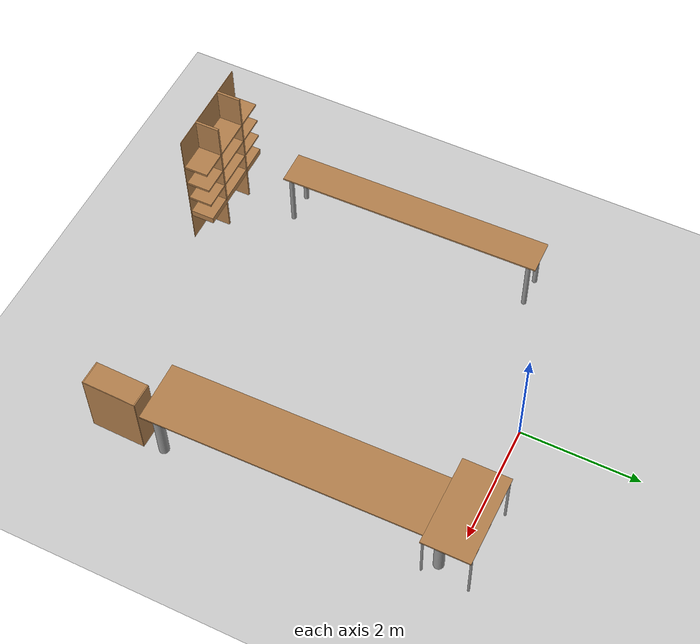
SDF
<sdf version="1.7">
 <world name="default">
  <model name="ground_plane">
   <static>1</static>
   <link name="link">
    <collision name="collision">
     <geometry><plane><normal>0 0 1</normal><size>100 100</size></plane></geometry>
     <surface>
      <contact><collide_bitmask>65535</collide_bitmask></contact>
      <friction><ode><mu>100</mu><mu2>50</mu2></ode></friction>
     </surface>
    </collision>
    <visual name="visual">
     <cast_shadows>0</cast_shadows>
     <geometry><plane><normal>0 0 1</normal><size>100 100</size></plane></geometry>
     <material>
      <script><uri>file://media/materials/scripts/gazebo.material</uri><name>Gazebo/Grey</name></script>
     </material>
    </visual>
   </link>
  </model>
  <model name="bookshelf_0">
   <static>1</static>
   <link name="link">
    <inertial><mass>1</mass></inertial>
    <collision name="back">
     <pose>0 0.005 0.6 0 -0 0</pose>
     <geometry><box><size>0.9 0.01 1.2</size></box></geometry>
    </collision>
    <visual name="visual1">
     <pose>0 0.005 0.6 0 -0 0</pose>
     <geometry><box><size>0.9 0.01 1.2</size></box></geometry>
     <material>
      <script><uri>file://media/materials/scripts/gazebo.material</uri><name>Gazebo/Wood</name></script>
     </material>
    </visual>
    <collision name="left_side">
     <pose>0.45 -0.195 0.6 0 -0 0</pose>
     <geometry><box><size>0.02 0.4 1.2</size></box></geometry>
    </collision>
    <visual name="visual2">
     <pose>0.45 -0.195 0.6 0 -0 0</pose>
     <geometry><box><size>0.02 0.4 1.2</size></box></geometry>
     <material>
      <script><uri>file://media/materials/scripts/gazebo.material</uri><name>Gazebo/Wood</name></script>
     </material>
    </visual>
    <collision name="right_side">
     <pose>-0.45 -0.195 0.6 0 -0 0</pose>
     <geometry><box><size>0.02 0.4 1.2</size></box></geometry>
    </collision>
    <visual name="visual3">
     <pose>-0.45 -0.195 0.6 0 -0 0</pose>
     <geometry><box><size>0.02 0.4 1.2</size></box></geometry>
     <material>
      <script><uri>file://media/materials/scripts/gazebo.material</uri><name>Gazebo/Wood</name></script>
     </material>
    </visual>
    <collision name="bottom">
     <pose>0 -0.195 0.03 0 -0 0</pose>
     <geometry><box><size>0.88 0.4 0.06</size></box></geometry>
    </collision>
    <visual name="visual4">
     <pose>0 -0.195 0.03 0 -0 0</pose>
     <geometry><box><size>0.88 0.4 0.06</size></box></geometry>
     <material>
      <script><uri>file://media/materials/scripts/gazebo.material</uri><name>Gazebo/Wood</name></script>
     </material>
    </visual>
    <collision name="top">
     <pose>0 -0.195 1.19 0 -0 0</pose>
     <geometry><box><size>0.88 0.4 0.02</size></box></geometry>
    </collision>
    <visual name="visual5">
     <pose>0 -0.195 1.19 0 -0 0</pose>
     <geometry><box><size>0.88 0.4 0.02</size></box></geometry>
     <material>
      <script><uri>file://media/materials/scripts/gazebo.material</uri><name>Gazebo/Wood</name></script>
     </material>
    </visual>
    <collision name="low_shelf">
     <pose>0 -0.195 0.43 0 -0 0</pose>
     <geometry><box><size>0.88 0.4 0.02</size></box></geometry>
    </collision>
    <visual name="visual6">
     <pose>0 -0.195 0.43 0 -0 0</pose>
     <geometry><box><size>0.88 0.4 0.02</size></box></geometry>
     <material>
      <script><uri>file://media/materials/scripts/gazebo.material</uri><name>Gazebo/Wood</name></script>
     </material>
    </visual>
    <collision name="high_shelf">
     <pose>0 -0.195 0.8 0 -0 0</pose>
     <geometry><box><size>0.88 0.4 0.02</size></box></geometry>
    </collision>
    <visual name="visual7">
     <pose>0 -0.195 0.8 0 -0 0</pose>
     <geometry><box><size>0.88 0.4 0.02</size></box></geometry>
     <material>
      <script><uri>file://media/materials/scripts/gazebo.material</uri><name>Gazebo/Wood</name></script>
     </material>
    </visual>
   </link>
   <pose>2.73004 -5.57226 0.00418 0 0 -1.59131</pose>
  </model>
  <model name="table_0">
   <link name="link">
    <inertial>
     <inertia><ixx>0</ixx><ixy>0</ixy><ixz>0</ixz><iyy>0</iyy><iyz>0</iyz><izz>0</izz></inertia>
     <mass>0</mass>
    </inertial>
    <pose>1.16745 -0.333998 0 0 -0 0</pose>
    <visual name="front_left_leg">
     <pose>2.3 0.38 0.5 0 -0 0</pose>
     <geometry><cylinder><radius>0.0859649</radius><length>0.953962</length></cylinder></geometry>
     <material>
      <script><uri>file://media/materials/scripts/gazebo.material</uri><name>Gazebo/Grey</name></script>
      <shader type="pixel"><normal_map>__default__</normal_map></shader>
      <ambient>0.3 0.3 0.3 1</ambient>
      <diffuse>0.7 0.7 0.7 1</diffuse>
      <specular>0.01 0.01 0.01 1</specular>
      <emissive>0 0 0 1</emissive>
     </material>
    </visual>
    <visual name="back_left_leg">
     <pose>-2.3 0.38 0.5 0 -0 0</pose>
     <geometry><cylinder><radius>0.0859649</radius><length>0.953962</length></cylinder></geometry>
     <material>
      <script><uri>file://media/materials/scripts/gazebo.material</uri><name>Gazebo/Grey</name></script>
      <shader type="pixel"><normal_map>__default__</normal_map></shader>
      <ambient>0.3 0.3 0.3 1</ambient>
      <diffuse>0.7 0.7 0.7 1</diffuse>
      <specular>0.01 0.01 0.01 1</specular>
      <emissive>0 0 0 1</emissive>
     </material>
    </visual>
    <visual name="front_right_leg">
     <pose>2.3 -0.38 0.5 0 -0 0</pose>
     <geometry><cylinder><radius>0.0859649</radius><length>0.953962</length></cylinder></geometry>
     <material>
      <script><uri>file://media/materials/scripts/gazebo.material</uri><name>Gazebo/Grey</name></script>
      <shader type="pixel"><normal_map>__default__</normal_map></shader>
      <ambient>0.3 0.3 0.3 1</ambient>
      <diffuse>0.7 0.7 0.7 1</diffuse>
      <specular>0.01 0.01 0.01 1</specular>
      <emissive>0 0 0 1</emissive>
     </material>
    </visual>
    <visual name="visual1">
     <pose>0 0 1 0 -0 0</pose>
     <geometry><box><size>5.07081 1.01373 0.028898</size></box></geometry>
     <material>
      <script><uri>file://media/materials/scripts/gazebo.material</uri><name>Gazebo/Wood</name></script>
      <shader type="pixel"><normal_map>__default__</normal_map></shader>
      <ambient>1 1 1 1</ambient>
      <diffuse>1 1 1 1</diffuse>
      <specular>0.2 0.2 0.2 1</specular>
      <emissive>0 0 0 1</emissive>
     </material>
    </visual>
    <visual name="back_right_leg">
     <pose>-2.3 -0.38 0.5 0 -0 0</pose>
     <geometry><cylinder><radius>0.0859649</radius><length>0.953962</length></cylinder></geometry>
     <material>
      <script><uri>file://media/materials/scripts/gazebo.material</uri><name>Gazebo/Grey</name></script>
      <shader type="pixel"><normal_map>__default__</normal_map></shader>
      <ambient>0.3 0.3 0.3 1</ambient>
      <diffuse>0.7 0.7 0.7 1</diffuse>
      <specular>0.01 0.01 0.01 1</specular>
      <emissive>0 0 0 1</emissive>
     </material>
    </visual>
    <collision name="back_right_leg">
     <pose>-0.68 -0.38 0.5 0 -0 0</pose>
     <geometry><cylinder><radius>0.085966</radius><length>0.953962</length></cylinder></geometry>
     <surface>
      <friction>
       <ode><mu>1</mu><mu2>1</mu2><fdir1>0 0 0</fdir1><slip1>0</slip1><slip2>0</slip2></ode>
       <torsional>
        <coefficient>1</coefficient>
        <patch_radius>0</patch_radius>
        <surface_radius>0</surface_radius>
        <use_patch_radius>1</use_patch_radius>
        <ode><slip>0</slip></ode>
       </torsional>
      </friction>
      <bounce><restitution_coefficient>0</restitution_coefficient><threshold>1e+06</threshold></bounce>
      <contact>
       <collide_without_contact>0</collide_without_contact>
       <collide_without_contact_bitmask>1</collide_without_contact_bitmask>
       <collide_bitmask>1</collide_bitmask>
       <ode>
        <soft_cfm>0</soft_cfm>
        <soft_erp>0.2</soft_erp>
        <kp>1e+13</kp>
        <kd>1</kd>
        <max_vel>0.01</max_vel>
        <min_depth>0</min_depth>
       </ode>
       <bullet>
        <split_impulse>1</split_impulse>
        <split_impulse_penetration_threshold>-0.01</split_impulse_penetration_threshold>
        <soft_cfm>0</soft_cfm>
        <soft_erp>0.2</soft_erp>
        <kp>1e+13</kp>
        <kd>1</kd>
       </bullet>
      </contact>
     </surface>
    </collision>
    <collision name="front_right_leg">
     <pose>0.68 -0.38 0.5 0 -0 0</pose>
     <geometry><cylinder><radius>0.085966</radius><length>0.953962</length></cylinder></geometry>
     <surface>
      <friction>
       <ode><mu>1</mu><mu2>1</mu2><fdir1>0 0 0</fdir1><slip1>0</slip1><slip2>0</slip2></ode>
       <torsional>
        <coefficient>1</coefficient>
        <patch_radius>0</patch_radius>
        <surface_radius>0</surface_radius>
        <use_patch_radius>1</use_patch_radius>
        <ode><slip>0</slip></ode>
       </torsional>
      </friction>
      <bounce><restitution_coefficient>0</restitution_coefficient><threshold>1e+06</threshold></bounce>
      <contact>
       <collide_without_contact>0</collide_without_contact>
       <collide_without_contact_bitmask>1</collide_without_contact_bitmask>
       <collide_bitmask>1</collide_bitmask>
       <ode>
        <soft_cfm>0</soft_cfm>
        <soft_erp>0.2</soft_erp>
        <kp>1e+13</kp>
        <kd>1</kd>
        <max_vel>0.01</max_vel>
        <min_depth>0</min_depth>
       </ode>
       <bullet>
        <split_impulse>1</split_impulse>
        <split_impulse_penetration_threshold>-0.01</split_impulse_penetration_threshold>
        <soft_cfm>0</soft_cfm>
        <soft_erp>0.2</soft_erp>
        <kp>1e+13</kp>
        <kd>1</kd>
       </bullet>
      </contact>
     </surface>
    </collision>
    <collision name="back_left_leg">
     <pose>-0.68 0.38 0.5 0 -0 0</pose>
     <geometry><cylinder><radius>0.085966</radius><length>0.953962</length></cylinder></geometry>
     <surface>
      <friction>
       <ode><mu>1</mu><mu2>1</mu2><fdir1>0 0 0</fdir1><slip1>0</slip1><slip2>0</slip2></ode>
       <torsional>
        <coefficient>1</coefficient>
        <patch_radius>0</patch_radius>
        <surface_radius>0</surface_radius>
        <use_patch_radius>1</use_patch_radius>
        <ode><slip>0</slip></ode>
       </torsional>
      </friction>
      <bounce><restitution_coefficient>0</restitution_coefficient><threshold>1e+06</threshold></bounce>
      <contact>
       <collide_without_contact>0</collide_without_contact>
       <collide_without_contact_bitmask>1</collide_without_contact_bitmask>
       <collide_bitmask>1</collide_bitmask>
       <ode>
        <soft_cfm>0</soft_cfm>
        <soft_erp>0.2</soft_erp>
        <kp>1e+13</kp>
        <kd>1</kd>
        <max_vel>0.01</max_vel>
        <min_depth>0</min_depth>
       </ode>
       <bullet>
        <split_impulse>1</split_impulse>
        <split_impulse_penetration_threshold>-0.01</split_impulse_penetration_threshold>
        <soft_cfm>0</soft_cfm>
        <soft_erp>0.2</soft_erp>
        <kp>1e+13</kp>
        <kd>1</kd>
       </bullet>
      </contact>
     </surface>
    </collision>
    <collision name="surface">
     <pose>0 0 1 0 -0 0</pose>
     <geometry><box><size>5.07081 1.01373 0.028898</size></box></geometry>
     <surface>
      <friction>
       <ode><mu>0.6</mu><mu2>0.6</mu2><fdir1>0 0 0</fdir1><slip1>0</slip1><slip2>0</slip2></ode>
       <torsional>
        <coefficient>1</coefficient>
        <patch_radius>0</patch_radius>
        <surface_radius>0</surface_radius>
        <use_patch_radius>1</use_patch_radius>
        <ode><slip>0</slip></ode>
       </torsional>
      </friction>
      <bounce><restitution_coefficient>0</restitution_coefficient><threshold>1e+06</threshold></bounce>
      <contact>
       <collide_without_contact>0</collide_without_contact>
       <collide_without_contact_bitmask>1</collide_without_contact_bitmask>
       <collide_bitmask>1</collide_bitmask>
       <ode>
        <soft_cfm>0</soft_cfm>
        <soft_erp>0.2</soft_erp>
        <kp>1e+13</kp>
        <kd>1</kd>
        <max_vel>0.01</max_vel>
        <min_depth>0</min_depth>
       </ode>
       <bullet>
        <split_impulse>1</split_impulse>
        <split_impulse_penetration_threshold>-0.01</split_impulse_penetration_threshold>
        <soft_cfm>0</soft_cfm>
        <soft_erp>0.2</soft_erp>
        <kp>1e+13</kp>
        <kd>1</kd>
       </bullet>
      </contact>
     </surface>
    </collision>
    <collision name="front_left_leg">
     <pose>0.68 0.38 0.5 0 -0 0</pose>
     <geometry><cylinder><radius>0.085966</radius><length>0.953962</length></cylinder></geometry>
     <surface>
      <friction>
       <ode><mu>1</mu><mu2>1</mu2><fdir1>0 0 0</fdir1><slip1>0</slip1><slip2>0</slip2></ode>
       <torsional>
        <coefficient>1</coefficient>
        <patch_radius>0</patch_radius>
        <surface_radius>0</surface_radius>
        <use_patch_radius>1</use_patch_radius>
        <ode><slip>0</slip></ode>
       </torsional>
      </friction>
      <bounce><restitution_coefficient>0</restitution_coefficient><threshold>1e+06</threshold></bounce>
      <contact>
       <collide_without_contact>0</collide_without_contact>
       <collide_without_contact_bitmask>1</collide_without_contact_bitmask>
       <collide_bitmask>1</collide_bitmask>
       <ode>
        <soft_cfm>0</soft_cfm>
        <soft_erp>0.2</soft_erp>
        <kp>1e+13</kp>
        <kd>1</kd>
        <max_vel>0.01</max_vel>
        <min_depth>0</min_depth>
       </ode>
       <bullet>
        <split_impulse>1</split_impulse>
        <split_impulse_penetration_threshold>-0.01</split_impulse_penetration_threshold>
        <soft_cfm>0</soft_cfm>
        <soft_erp>0.2</soft_erp>
        <kp>1e+13</kp>
        <kd>1</kd>
       </bullet>
      </contact>
     </surface>
    </collision>
   </link>
   <static>1</static>
   <pose>2.56032 -1.33661 0 0 0 -1.55574</pose>
  </model>
  <model name="table">
   <static>1</static>
   <link name="link">
    <collision name="surface">
     <pose>0 0 1 0 -0 0</pose>
     <geometry><box><size>1.5 0.8 0.03</size></box></geometry>
     <surface><friction><ode><mu>0.6</mu><mu2>0.6</mu2></ode></friction></surface>
    </collision>
    <visual name="visual1">
     <pose>0 0 1 0 -0 0</pose>
     <geometry><box><size>1.5 0.8 0.03</size></box></geometry>
     <material>
      <script><uri>file://media/materials/scripts/gazebo.material</uri><name>Gazebo/Wood</name></script>
     </material>
    </visual>
    <collision name="front_left_leg">
     <pose>0.68 0.38 0.5 0 -0 0</pose>
     <geometry><cylinder><radius>0.02</radius><length>1</length></cylinder></geometry>
    </collision>
    <visual name="front_left_leg">
     <pose>0.68 0.38 0.5 0 -0 0</pose>
     <geometry><cylinder><radius>0.02</radius><length>1</length></cylinder></geometry>
     <material>
      <script><uri>file://media/materials/scripts/gazebo.material</uri><name>Gazebo/Grey</name></script>
     </material>
    </visual>
    <collision name="front_right_leg">
     <pose>0.68 -0.38 0.5 0 -0 0</pose>
     <geometry><cylinder><radius>0.02</radius><length>1</length></cylinder></geometry>
    </collision>
    <visual name="front_right_leg">
     <pose>0.68 -0.38 0.5 0 -0 0</pose>
     <geometry><cylinder><radius>0.02</radius><length>1</length></cylinder></geometry>
     <material>
      <script><uri>file://media/materials/scripts/gazebo.material</uri><name>Gazebo/Grey</name></script>
     </material>
    </visual>
    <collision name="back_right_leg">
     <pose>-0.68 -0.38 0.5 0 -0 0</pose>
     <geometry><cylinder><radius>0.02</radius><length>1</length></cylinder></geometry>
    </collision>
    <visual name="back_right_leg">
     <pose>-0.68 -0.38 0.5 0 -0 0</pose>
     <geometry><cylinder><radius>0.02</radius><length>1</length></cylinder></geometry>
     <material>
      <script><uri>file://media/materials/scripts/gazebo.material</uri><name>Gazebo/Grey</name></script>
     </material>
    </visual>
    <collision name="back_left_leg">
     <pose>-0.68 0.38 0.5 0 -0 0</pose>
     <geometry><cylinder><radius>0.02</radius><length>1</length></cylinder></geometry>
    </collision>
    <visual name="back_left_leg">
     <pose>-0.68 0.38 0.5 0 -0 0</pose>
     <geometry><cylinder><radius>0.02</radius><length>1</length></cylinder></geometry>
     <material>
      <script><uri>file://media/materials/scripts/gazebo.material</uri><name>Gazebo/Grey</name></script>
     </material>
    </visual>
   </link>
   <pose>2.08899 -0.025051 0 0 -0 0</pose>
  </model>
  <model name="bookshelf_1">
   <link name="link">
    <inertial>
     <mass>3.70083</mass>
     <inertia>
      <ixx>0.0497882</ixx>
      <ixy>0</ixy>
      <ixz>0</ixz>
      <iyy>0.848153</iyy>
      <iyz>0</iyz>
      <izz>0.897053</izz>
     </inertia>
    </inertial>
    <pose>0.379086 0 0.607317 0 -0 0</pose>
    <visual name="visual1">
     <pose>0 0.005 0.6 0 -0 0</pose>
     <geometry><box><size>1.6956 0.01 2.39901</size></box></geometry>
     <material>
      <script><uri>file://media/materials/scripts/gazebo.material</uri><name>Gazebo/Wood</name></script>
      <shader type="pixel"><normal_map>__default__</normal_map></shader>
      <ambient>1 1 1 1</ambient>
      <diffuse>1 1 1 1</diffuse>
      <specular>0.2 0.2 0.2 1</specular>
      <emissive>0 0 0 1</emissive>
     </material>
    </visual>
    <visual name="visual6">
     <pose>0 -0.195 0.43 0 -0 0</pose>
     <geometry><box><size>1.65792 0.4 0.037937</size></box></geometry>
     <material>
      <script><uri>file://media/materials/scripts/gazebo.material</uri><name>Gazebo/Wood</name></script>
      <shader type="pixel"><normal_map>__default__</normal_map></shader>
      <ambient>1 1 1 1</ambient>
      <diffuse>1 1 1 1</diffuse>
      <specular>0.2 0.2 0.2 1</specular>
      <emissive>0 0 0 1</emissive>
     </material>
    </visual>
    <visual name="visual7">
     <pose>0 -0.195 0.8 0 -0 0</pose>
     <geometry><box><size>1.65792 0.4 0.037937</size></box></geometry>
     <material>
      <script><uri>file://media/materials/scripts/gazebo.material</uri><name>Gazebo/Wood</name></script>
      <shader type="pixel"><normal_map>__default__</normal_map></shader>
      <ambient>1 1 1 1</ambient>
      <diffuse>1 1 1 1</diffuse>
      <specular>0.2 0.2 0.2 1</specular>
      <emissive>0 0 0 1</emissive>
     </material>
    </visual>
    <visual name="visual4">
     <pose>0 -0.195 0.03 0 -0 0</pose>
     <geometry><box><size>1.65792 0.4 0.119432</size></box></geometry>
     <material>
      <script><uri>file://media/materials/scripts/gazebo.material</uri><name>Gazebo/Wood</name></script>
      <shader type="pixel"><normal_map>__default__</normal_map></shader>
      <ambient>1 1 1 1</ambient>
      <diffuse>1 1 1 1</diffuse>
      <specular>0.2 0.2 0.2 1</specular>
      <emissive>0 0 0 1</emissive>
     </material>
    </visual>
    <visual name="visual2">
     <pose>0.35 -0.195 0.6 0 -0 0</pose>
     <geometry><box><size>0.037619 0.4 2.39901</size></box></geometry>
     <material>
      <script><uri>file://media/materials/scripts/gazebo.material</uri><name>Gazebo/Wood</name></script>
      <shader type="pixel"><normal_map>__default__</normal_map></shader>
      <ambient>1 1 1 1</ambient>
      <diffuse>1 1 1 1</diffuse>
      <specular>0.2 0.2 0.2 1</specular>
      <emissive>0 0 0 1</emissive>
     </material>
    </visual>
    <visual name="visual3">
     <pose>-0.35 -0.195 0.6 0 -0 0</pose>
     <geometry><box><size>0.037619 0.4 2.39901</size></box></geometry>
     <material>
      <script><uri>file://media/materials/scripts/gazebo.material</uri><name>Gazebo/Wood</name></script>
      <shader type="pixel"><normal_map>__default__</normal_map></shader>
      <ambient>1 1 1 1</ambient>
      <diffuse>1 1 1 1</diffuse>
      <specular>0.2 0.2 0.2 1</specular>
      <emissive>0 0 0 1</emissive>
     </material>
    </visual>
    <visual name="visual5">
     <pose>0 -0.195 1.19 0 -0 0</pose>
     <geometry><box><size>1.65792 0.4 0.037937</size></box></geometry>
     <material>
      <script><uri>file://media/materials/scripts/gazebo.material</uri><name>Gazebo/Wood</name></script>
      <shader type="pixel"><normal_map>__default__</normal_map></shader>
      <ambient>1 1 1 1</ambient>
      <diffuse>1 1 1 1</diffuse>
      <specular>0.2 0.2 0.2 1</specular>
      <emissive>0 0 0 1</emissive>
     </material>
    </visual>
    <collision name="right_side">
     <pose>-0.45 -0.195 0.6 0 -0 0</pose>
     <geometry><box><size>0.037619 0.4 2.39901</size></box></geometry>
     <surface>
      <friction>
       <ode><mu>1</mu><mu2>1</mu2><fdir1>0 0 0</fdir1><slip1>0</slip1><slip2>0</slip2></ode>
       <torsional>
        <coefficient>1</coefficient>
        <patch_radius>0</patch_radius>
        <surface_radius>0</surface_radius>
        <use_patch_radius>1</use_patch_radius>
        <ode><slip>0</slip></ode>
       </torsional>
      </friction>
      <bounce><restitution_coefficient>0</restitution_coefficient><threshold>1e+06</threshold></bounce>
      <contact>
       <collide_without_contact>0</collide_without_contact>
       <collide_without_contact_bitmask>1</collide_without_contact_bitmask>
       <collide_bitmask>1</collide_bitmask>
       <ode>
        <soft_cfm>0</soft_cfm>
        <soft_erp>0.2</soft_erp>
        <kp>1e+13</kp>
        <kd>1</kd>
        <max_vel>0.01</max_vel>
        <min_depth>0</min_depth>
       </ode>
       <bullet>
        <split_impulse>1</split_impulse>
        <split_impulse_penetration_threshold>-0.01</split_impulse_penetration_threshold>
        <soft_cfm>0</soft_cfm>
        <soft_erp>0.2</soft_erp>
        <kp>1e+13</kp>
        <kd>1</kd>
       </bullet>
      </contact>
     </surface>
    </collision>
    <collision name="back">
     <pose>0 0.005 0.6 0 -0 0</pose>
     <geometry><box><size>1.6956 0.01 2.39901</size></box></geometry>
     <surface>
      <friction>
       <ode><mu>1</mu><mu2>1</mu2><fdir1>0 0 0</fdir1><slip1>0</slip1><slip2>0</slip2></ode>
       <torsional>
        <coefficient>1</coefficient>
        <patch_radius>0</patch_radius>
        <surface_radius>0</surface_radius>
        <use_patch_radius>1</use_patch_radius>
        <ode><slip>0</slip></ode>
       </torsional>
      </friction>
      <bounce><restitution_coefficient>0</restitution_coefficient><threshold>1e+06</threshold></bounce>
      <contact>
       <collide_without_contact>0</collide_without_contact>
       <collide_without_contact_bitmask>1</collide_without_contact_bitmask>
       <collide_bitmask>1</collide_bitmask>
       <ode>
        <soft_cfm>0</soft_cfm>
        <soft_erp>0.2</soft_erp>
        <kp>1e+13</kp>
        <kd>1</kd>
        <max_vel>0.01</max_vel>
        <min_depth>0</min_depth>
       </ode>
       <bullet>
        <split_impulse>1</split_impulse>
        <split_impulse_penetration_threshold>-0.01</split_impulse_penetration_threshold>
        <soft_cfm>0</soft_cfm>
        <soft_erp>0.2</soft_erp>
        <kp>1e+13</kp>
        <kd>1</kd>
       </bullet>
      </contact>
     </surface>
    </collision>
    <collision name="low_shelf">
     <pose>0 -0.195 0.43 0 -0 0</pose>
     <geometry><box><size>1.65792 0.4 0.037937</size></box></geometry>
     <surface>
      <friction>
       <ode><mu>1</mu><mu2>1</mu2><fdir1>0 0 0</fdir1><slip1>0</slip1><slip2>0</slip2></ode>
       <torsional>
        <coefficient>1</coefficient>
        <patch_radius>0</patch_radius>
        <surface_radius>0</surface_radius>
        <use_patch_radius>1</use_patch_radius>
        <ode><slip>0</slip></ode>
       </torsional>
      </friction>
      <bounce><restitution_coefficient>0</restitution_coefficient><threshold>1e+06</threshold></bounce>
      <contact>
       <collide_without_contact>0</collide_without_contact>
       <collide_without_contact_bitmask>1</collide_without_contact_bitmask>
       <collide_bitmask>1</collide_bitmask>
       <ode>
        <soft_cfm>0</soft_cfm>
        <soft_erp>0.2</soft_erp>
        <kp>1e+13</kp>
        <kd>1</kd>
        <max_vel>0.01</max_vel>
        <min_depth>0</min_depth>
       </ode>
       <bullet>
        <split_impulse>1</split_impulse>
        <split_impulse_penetration_threshold>-0.01</split_impulse_penetration_threshold>
        <soft_cfm>0</soft_cfm>
        <soft_erp>0.2</soft_erp>
        <kp>1e+13</kp>
        <kd>1</kd>
       </bullet>
      </contact>
     </surface>
    </collision>
    <collision name="high_shelf">
     <pose>0 -0.195 0.8 0 -0 0</pose>
     <geometry><box><size>1.65792 0.4 0.037937</size></box></geometry>
     <surface>
      <friction>
       <ode><mu>1</mu><mu2>1</mu2><fdir1>0 0 0</fdir1><slip1>0</slip1><slip2>0</slip2></ode>
       <torsional>
        <coefficient>1</coefficient>
        <patch_radius>0</patch_radius>
        <surface_radius>0</surface_radius>
        <use_patch_radius>1</use_patch_radius>
        <ode><slip>0</slip></ode>
       </torsional>
      </friction>
      <bounce><restitution_coefficient>0</restitution_coefficient><threshold>1e+06</threshold></bounce>
      <contact>
       <collide_without_contact>0</collide_without_contact>
       <collide_without_contact_bitmask>1</collide_without_contact_bitmask>
       <collide_bitmask>1</collide_bitmask>
       <ode>
        <soft_cfm>0</soft_cfm>
        <soft_erp>0.2</soft_erp>
        <kp>1e+13</kp>
        <kd>1</kd>
        <max_vel>0.01</max_vel>
        <min_depth>0</min_depth>
       </ode>
       <bullet>
        <split_impulse>1</split_impulse>
        <split_impulse_penetration_threshold>-0.01</split_impulse_penetration_threshold>
        <soft_cfm>0</soft_cfm>
        <soft_erp>0.2</soft_erp>
        <kp>1e+13</kp>
        <kd>1</kd>
       </bullet>
      </contact>
     </surface>
    </collision>
    <collision name="left_side">
     <pose>0.45 -0.195 0.6 0 -0 0</pose>
     <geometry><box><size>0.037619 0.4 2.39901</size></box></geometry>
     <surface>
      <friction>
       <ode><mu>1</mu><mu2>1</mu2><fdir1>0 0 0</fdir1><slip1>0</slip1><slip2>0</slip2></ode>
       <torsional>
        <coefficient>1</coefficient>
        <patch_radius>0</patch_radius>
        <surface_radius>0</surface_radius>
        <use_patch_radius>1</use_patch_radius>
        <ode><slip>0</slip></ode>
       </torsional>
      </friction>
      <bounce><restitution_coefficient>0</restitution_coefficient><threshold>1e+06</threshold></bounce>
      <contact>
       <collide_without_contact>0</collide_without_contact>
       <collide_without_contact_bitmask>1</collide_without_contact_bitmask>
       <collide_bitmask>1</collide_bitmask>
       <ode>
        <soft_cfm>0</soft_cfm>
        <soft_erp>0.2</soft_erp>
        <kp>1e+13</kp>
        <kd>1</kd>
        <max_vel>0.01</max_vel>
        <min_depth>0</min_depth>
       </ode>
       <bullet>
        <split_impulse>1</split_impulse>
        <split_impulse_penetration_threshold>-0.01</split_impulse_penetration_threshold>
        <soft_cfm>0</soft_cfm>
        <soft_erp>0.2</soft_erp>
        <kp>1e+13</kp>
        <kd>1</kd>
       </bullet>
      </contact>
     </surface>
    </collision>
    <collision name="bottom">
     <pose>0 -0.195 0.03 0 -0 0</pose>
     <geometry><box><size>1.65792 0.4 0.119432</size></box></geometry>
     <surface>
      <friction>
       <ode><mu>1</mu><mu2>1</mu2><fdir1>0 0 0</fdir1><slip1>0</slip1><slip2>0</slip2></ode>
       <torsional>
        <coefficient>1</coefficient>
        <patch_radius>0</patch_radius>
        <surface_radius>0</surface_radius>
        <use_patch_radius>1</use_patch_radius>
        <ode><slip>0</slip></ode>
       </torsional>
      </friction>
      <bounce><restitution_coefficient>0</restitution_coefficient><threshold>1e+06</threshold></bounce>
      <contact>
       <collide_without_contact>0</collide_without_contact>
       <collide_without_contact_bitmask>1</collide_without_contact_bitmask>
       <collide_bitmask>1</collide_bitmask>
       <ode>
        <soft_cfm>0</soft_cfm>
        <soft_erp>0.2</soft_erp>
        <kp>1e+13</kp>
        <kd>1</kd>
        <max_vel>0.01</max_vel>
        <min_depth>0</min_depth>
       </ode>
       <bullet>
        <split_impulse>1</split_impulse>
        <split_impulse_penetration_threshold>-0.01</split_impulse_penetration_threshold>
        <soft_cfm>0</soft_cfm>
        <soft_erp>0.2</soft_erp>
        <kp>1e+13</kp>
        <kd>1</kd>
       </bullet>
      </contact>
     </surface>
    </collision>
    <collision name="top">
     <pose>0 -0.195 1.19 0 -0 0</pose>
     <geometry><box><size>1.65792 0.4 0.037937</size></box></geometry>
     <surface>
      <friction>
       <ode><mu>1</mu><mu2>1</mu2><fdir1>0 0 0</fdir1><slip1>0</slip1><slip2>0</slip2></ode>
       <torsional>
        <coefficient>1</coefficient>
        <patch_radius>0</patch_radius>
        <surface_radius>0</surface_radius>
        <use_patch_radius>1</use_patch_radius>
        <ode><slip>0</slip></ode>
       </torsional>
      </friction>
      <bounce><restitution_coefficient>0</restitution_coefficient><threshold>1e+06</threshold></bounce>
      <contact>
       <collide_without_contact>0</collide_without_contact>
       <collide_without_contact_bitmask>1</collide_without_contact_bitmask>
       <collide_bitmask>1</collide_bitmask>
       <ode>
        <soft_cfm>0</soft_cfm>
        <soft_erp>0.2</soft_erp>
        <kp>1e+13</kp>
        <kd>1</kd>
        <max_vel>0.01</max_vel>
        <min_depth>0</min_depth>
       </ode>
       <bullet>
        <split_impulse>1</split_impulse>
        <split_impulse_penetration_threshold>-0.01</split_impulse_penetration_threshold>
        <soft_cfm>0</soft_cfm>
        <soft_erp>0.2</soft_erp>
        <kp>1e+13</kp>
        <kd>1</kd>
       </bullet>
      </contact>
     </surface>
    </collision>
   </link>
   <static>1</static>
   <pose>-1.59209 -6.39662 0 0 0 -3.13659</pose>
  </model>
  <model name="table_1">
   <link name="link">
    <inertial>
     <inertia><ixx>0</ixx><ixy>0</ixy><ixz>0</ixz><iyy>0</iyy><iyz>0</iyz><izz>0</izz></inertia>
     <mass>0</mass>
    </inertial>
    <pose>0.027361 -0.985888 0 0 -0 0</pose>
    <visual name="visual1">
     <pose>0 0 1 0 -0 0</pose>
     <geometry><box><size>4.45665 0.56412 0.03</size></box></geometry>
     <material>
      <script><uri>file://media/materials/scripts/gazebo.material</uri><name>Gazebo/Wood</name></script>
      <shader type="pixel"><normal_map>__default__</normal_map></shader>
      <ambient>1 1 1 1</ambient>
      <diffuse>1 1 1 1</diffuse>
      <specular>0.2 0.2 0.2 1</specular>
      <emissive>0 0 0 1</emissive>
     </material>
    </visual>
    <visual name="back_left_leg">
     <pose>-2.1 0.24 0.5 0 -0 0</pose>
     <geometry><cylinder><radius>0.0421171</radius><length>1</length></cylinder></geometry>
     <material>
      <script><uri>file://media/materials/scripts/gazebo.material</uri><name>Gazebo/Grey</name></script>
      <shader type="pixel"><normal_map>__default__</normal_map></shader>
      <ambient>0.3 0.3 0.3 1</ambient>
      <diffuse>0.7 0.7 0.7 1</diffuse>
      <specular>0.01 0.01 0.01 1</specular>
      <emissive>0 0 0 1</emissive>
     </material>
    </visual>
    <visual name="front_right_leg">
     <pose>2.1 -0.24 0.5 0 -0 0</pose>
     <geometry><cylinder><radius>0.0421171</radius><length>1</length></cylinder></geometry>
     <material>
      <script><uri>file://media/materials/scripts/gazebo.material</uri><name>Gazebo/Grey</name></script>
      <shader type="pixel"><normal_map>__default__</normal_map></shader>
      <ambient>0.3 0.3 0.3 1</ambient>
      <diffuse>0.7 0.7 0.7 1</diffuse>
      <specular>0.01 0.01 0.01 1</specular>
      <emissive>0 0 0 1</emissive>
     </material>
    </visual>
    <visual name="back_right_leg">
     <pose>-2.1 -0.24 0.5 0 -0 0</pose>
     <geometry><cylinder><radius>0.0421171</radius><length>1</length></cylinder></geometry>
     <material>
      <script><uri>file://media/materials/scripts/gazebo.material</uri><name>Gazebo/Grey</name></script>
      <shader type="pixel"><normal_map>__default__</normal_map></shader>
      <ambient>0.3 0.3 0.3 1</ambient>
      <diffuse>0.7 0.7 0.7 1</diffuse>
      <specular>0.01 0.01 0.01 1</specular>
      <emissive>0 0 0 1</emissive>
     </material>
    </visual>
    <visual name="front_left_leg">
     <pose>2.1 0.24 0.5 0 -0 0</pose>
     <geometry><cylinder><radius>0.0421171</radius><length>1</length></cylinder></geometry>
     <material>
      <script><uri>file://media/materials/scripts/gazebo.material</uri><name>Gazebo/Grey</name></script>
      <shader type="pixel"><normal_map>__default__</normal_map></shader>
      <ambient>0.3 0.3 0.3 1</ambient>
      <diffuse>0.7 0.7 0.7 1</diffuse>
      <specular>0.01 0.01 0.01 1</specular>
      <emissive>0 0 0 1</emissive>
     </material>
    </visual>
    <collision name="back_left_leg">
     <pose>-0.68 0.38 0.5 0 -0 0</pose>
     <geometry><cylinder><radius>0.042117</radius><length>1</length></cylinder></geometry>
     <surface>
      <friction>
       <ode><mu>1</mu><mu2>1</mu2><fdir1>0 0 0</fdir1><slip1>0</slip1><slip2>0</slip2></ode>
       <torsional>
        <coefficient>1</coefficient>
        <patch_radius>0</patch_radius>
        <surface_radius>0</surface_radius>
        <use_patch_radius>1</use_patch_radius>
        <ode><slip>0</slip></ode>
       </torsional>
      </friction>
      <bounce><restitution_coefficient>0</restitution_coefficient><threshold>1e+06</threshold></bounce>
      <contact>
       <collide_without_contact>0</collide_without_contact>
       <collide_without_contact_bitmask>1</collide_without_contact_bitmask>
       <collide_bitmask>1</collide_bitmask>
       <ode>
        <soft_cfm>0</soft_cfm>
        <soft_erp>0.2</soft_erp>
        <kp>1e+13</kp>
        <kd>1</kd>
        <max_vel>0.01</max_vel>
        <min_depth>0</min_depth>
       </ode>
       <bullet>
        <split_impulse>1</split_impulse>
        <split_impulse_penetration_threshold>-0.01</split_impulse_penetration_threshold>
        <soft_cfm>0</soft_cfm>
        <soft_erp>0.2</soft_erp>
        <kp>1e+13</kp>
        <kd>1</kd>
       </bullet>
      </contact>
     </surface>
    </collision>
    <collision name="front_left_leg">
     <pose>0.68 0.38 0.5 0 -0 0</pose>
     <geometry><cylinder><radius>0.042117</radius><length>1</length></cylinder></geometry>
     <surface>
      <friction>
       <ode><mu>1</mu><mu2>1</mu2><fdir1>0 0 0</fdir1><slip1>0</slip1><slip2>0</slip2></ode>
       <torsional>
        <coefficient>1</coefficient>
        <patch_radius>0</patch_radius>
        <surface_radius>0</surface_radius>
        <use_patch_radius>1</use_patch_radius>
        <ode><slip>0</slip></ode>
       </torsional>
      </friction>
      <bounce><restitution_coefficient>0</restitution_coefficient><threshold>1e+06</threshold></bounce>
      <contact>
       <collide_without_contact>0</collide_without_contact>
       <collide_without_contact_bitmask>1</collide_without_contact_bitmask>
       <collide_bitmask>1</collide_bitmask>
       <ode>
        <soft_cfm>0</soft_cfm>
        <soft_erp>0.2</soft_erp>
        <kp>1e+13</kp>
        <kd>1</kd>
        <max_vel>0.01</max_vel>
        <min_depth>0</min_depth>
       </ode>
       <bullet>
        <split_impulse>1</split_impulse>
        <split_impulse_penetration_threshold>-0.01</split_impulse_penetration_threshold>
        <soft_cfm>0</soft_cfm>
        <soft_erp>0.2</soft_erp>
        <kp>1e+13</kp>
        <kd>1</kd>
       </bullet>
      </contact>
     </surface>
    </collision>
    <collision name="surface">
     <pose>0 0 1 0 -0 0</pose>
     <geometry><box><size>4.45665 0.56412 0.03</size></box></geometry>
     <surface>
      <friction>
       <ode><mu>0.6</mu><mu2>0.6</mu2><fdir1>0 0 0</fdir1><slip1>0</slip1><slip2>0</slip2></ode>
       <torsional>
        <coefficient>1</coefficient>
        <patch_radius>0</patch_radius>
        <surface_radius>0</surface_radius>
        <use_patch_radius>1</use_patch_radius>
        <ode><slip>0</slip></ode>
       </torsional>
      </friction>
      <bounce><restitution_coefficient>0</restitution_coefficient><threshold>1e+06</threshold></bounce>
      <contact>
       <collide_without_contact>0</collide_without_contact>
       <collide_without_contact_bitmask>1</collide_without_contact_bitmask>
       <collide_bitmask>1</collide_bitmask>
       <ode>
        <soft_cfm>0</soft_cfm>
        <soft_erp>0.2</soft_erp>
        <kp>1e+13</kp>
        <kd>1</kd>
        <max_vel>0.01</max_vel>
        <min_depth>0</min_depth>
       </ode>
       <bullet>
        <split_impulse>1</split_impulse>
        <split_impulse_penetration_threshold>-0.01</split_impulse_penetration_threshold>
        <soft_cfm>0</soft_cfm>
        <soft_erp>0.2</soft_erp>
        <kp>1e+13</kp>
        <kd>1</kd>
       </bullet>
      </contact>
     </surface>
    </collision>
    <collision name="back_right_leg">
     <pose>-0.68 -0.38 0.5 0 -0 0</pose>
     <geometry><cylinder><radius>0.042117</radius><length>1</length></cylinder></geometry>
     <surface>
      <friction>
       <ode><mu>1</mu><mu2>1</mu2><fdir1>0 0 0</fdir1><slip1>0</slip1><slip2>0</slip2></ode>
       <torsional>
        <coefficient>1</coefficient>
        <patch_radius>0</patch_radius>
        <surface_radius>0</surface_radius>
        <use_patch_radius>1</use_patch_radius>
        <ode><slip>0</slip></ode>
       </torsional>
      </friction>
      <bounce><restitution_coefficient>0</restitution_coefficient><threshold>1e+06</threshold></bounce>
      <contact>
       <collide_without_contact>0</collide_without_contact>
       <collide_without_contact_bitmask>1</collide_without_contact_bitmask>
       <collide_bitmask>1</collide_bitmask>
       <ode>
        <soft_cfm>0</soft_cfm>
        <soft_erp>0.2</soft_erp>
        <kp>1e+13</kp>
        <kd>1</kd>
        <max_vel>0.01</max_vel>
        <min_depth>0</min_depth>
       </ode>
       <bullet>
        <split_impulse>1</split_impulse>
        <split_impulse_penetration_threshold>-0.01</split_impulse_penetration_threshold>
        <soft_cfm>0</soft_cfm>
        <soft_erp>0.2</soft_erp>
        <kp>1e+13</kp>
        <kd>1</kd>
       </bullet>
      </contact>
     </surface>
    </collision>
    <collision name="front_right_leg">
     <pose>0.68 -0.38 0.5 0 -0 0</pose>
     <geometry><cylinder><radius>0.042117</radius><length>1</length></cylinder></geometry>
     <surface>
      <friction>
       <ode><mu>1</mu><mu2>1</mu2><fdir1>0 0 0</fdir1><slip1>0</slip1><slip2>0</slip2></ode>
       <torsional>
        <coefficient>1</coefficient>
        <patch_radius>0</patch_radius>
        <surface_radius>0</surface_radius>
        <use_patch_radius>1</use_patch_radius>
        <ode><slip>0</slip></ode>
       </torsional>
      </friction>
      <bounce><restitution_coefficient>0</restitution_coefficient><threshold>1e+06</threshold></bounce>
      <contact>
       <collide_without_contact>0</collide_without_contact>
       <collide_without_contact_bitmask>1</collide_without_contact_bitmask>
       <collide_bitmask>1</collide_bitmask>
       <ode>
        <soft_cfm>0</soft_cfm>
        <soft_erp>0.2</soft_erp>
        <kp>1e+13</kp>
        <kd>1</kd>
        <max_vel>0.01</max_vel>
        <min_depth>0</min_depth>
       </ode>
       <bullet>
        <split_impulse>1</split_impulse>
        <split_impulse_penetration_threshold>-0.01</split_impulse_penetration_threshold>
        <soft_cfm>0</soft_cfm>
        <soft_erp>0.2</soft_erp>
        <kp>1e+13</kp>
        <kd>1</kd>
       </bullet>
      </contact>
     </surface>
    </collision>
   </link>
   <static>1</static>
   <pose>-3.48118 -3.03445 0 0 -0 1.58647</pose>
  </model>
 </world>
</sdf>
